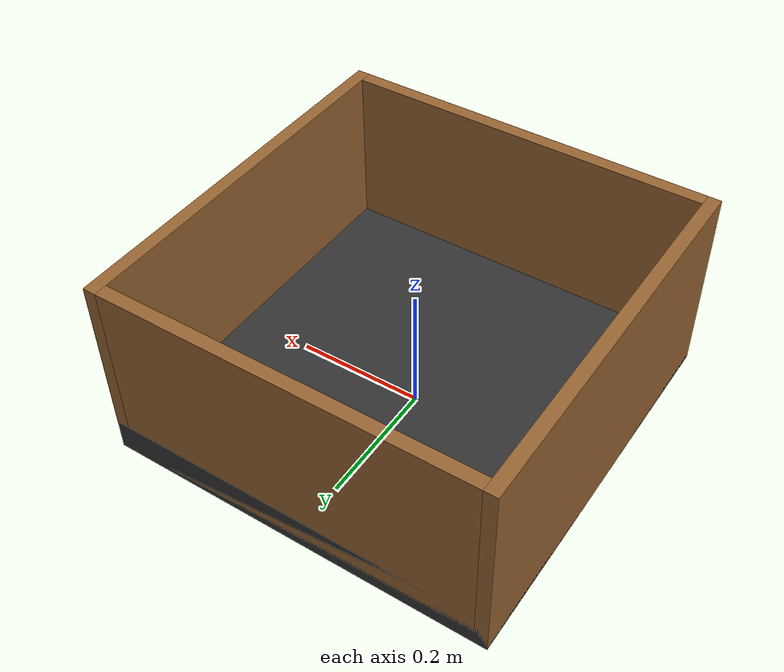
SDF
<?xml version="1.0" ?>
<sdf version="1.6">
  <model name="receptacle_box">
    <static>true</static>
    <link name="link">
      <pose>0 0 0 0 0 0</pose>

      <collision name="base_collision">
        <pose>0 0 0.025 0 0 0</pose>
        <geometry>
          <box>
            <size>0.6 0.6 0.05</size>
          </box>
        </geometry>
      </collision>
      <visual name="base_visual">
        <pose>0 0 0.025 0 0 0</pose>
        <geometry>
          <box>
            <size>0.6 0.6 0.05</size>
          </box>
        </geometry>
       <material>
          <ambient>0.2 0.2 0.2 1</ambient>
          <diffuse>0.2 0.2 0.2 1</diffuse>
          <specular>0.1 0.1 0.1 1</specular>
        </material>
      </visual>

      <collision name="wall1_collision">
        <pose>0.29 0 0.15 0 0 0</pose>
        <geometry>
          <box>
            <size>0.02 0.6 0.3</size>
          </box>
        </geometry>
      </collision>
      <visual name="wall1_visual">
        <pose>0.29 0 0.15 0 0 0</pose>
        <geometry>
          <box>
            <size>0.02 0.6 0.3</size>
          </box>
        </geometry>
        <material>
          <ambient>0.6 0.4 0.2 1</ambient>
          <diffuse>0.6 0.4 0.2 1</diffuse>
        </material>
      </visual>

      <collision name="wall2_collision">
        <pose>-0.29 0 0.15 0 0 0</pose>
        <geometry>
          <box>
            <size>0.02 0.6 0.3</size>
          </box>
        </geometry>
      </collision>
      <visual name="wall2_visual">
        <pose>-0.29 0 0.15 0 0 0</pose>
        <geometry>
          <box>
            <size>0.02 0.6 0.3</size>
          </box>
        </geometry>
        <material>
          <ambient>0.6 0.4 0.2 1</ambient>
          <diffuse>0.6 0.4 0.2 1</diffuse>
        </material>
      </visual>

      <collision name="wall3_collision">
        <pose>0 0.29 0.15 0 0 0</pose>
        <geometry>
          <box>
            <size>0.56 0.02 0.3</size>
          </box>
        </geometry>
      </collision>
      <visual name="wall3_visual">
        <pose>0 0.29 0.15 0 0 0</pose>
        <geometry>
          <box>
            <size>0.56 0.02 0.3</size>
          </box>
        </geometry>
        <material>
          <ambient>0.6 0.4 0.2 1</ambient>
          <diffuse>0.6 0.4 0.2 1</diffuse>
        </material>
      </visual>

      <collision name="wall4_collision">
        <pose>0 -0.29 0.15 0 0 0</pose>
        <geometry>
          <box>
            <size>0.56 0.02 0.3</size>
          </box>
        </geometry>
      </collision>
      <visual name="wall4_visual">
        <pose>0 -0.29 0.15 0 0 0</pose>
        <geometry>
          <box>
            <size>0.56 0.02 0.3</size>
          </box>
        </geometry>
        <material>
          <ambient>0.6 0.4 0.2 1</ambient>
          <diffuse>0.6 0.4 0.2 1</diffuse>
        </material>
      </visual>

    </link>
  </model>
</sdf>
